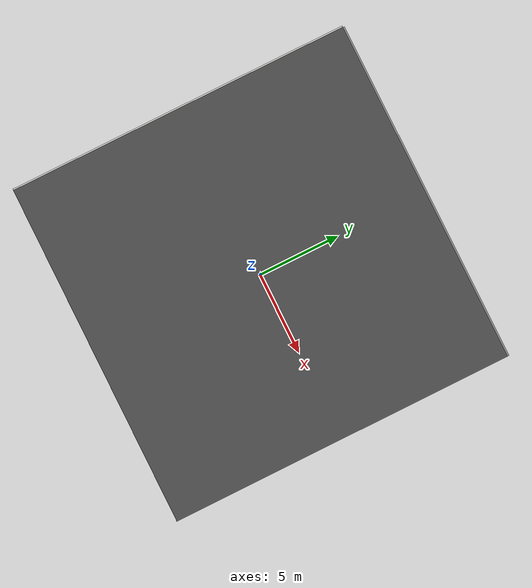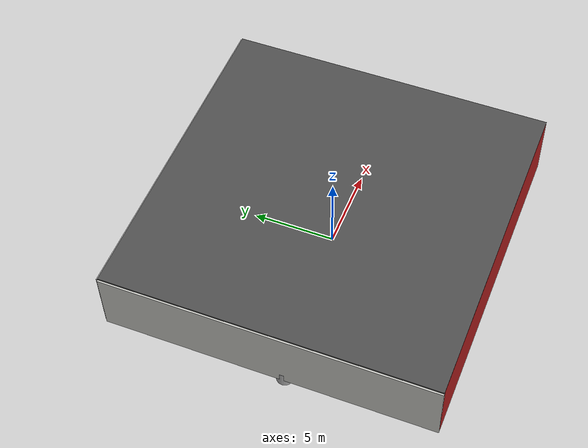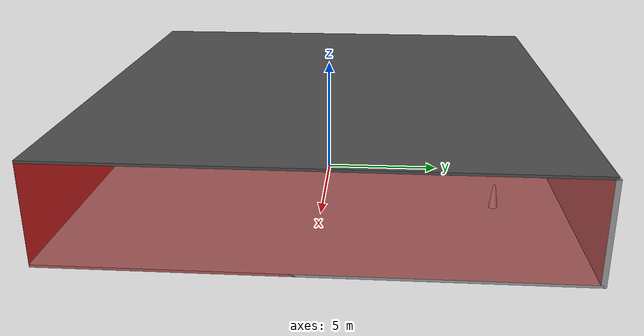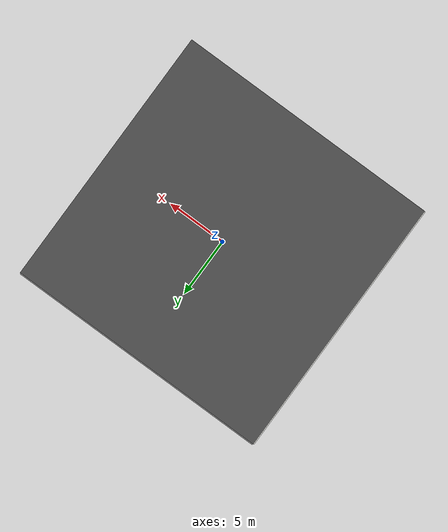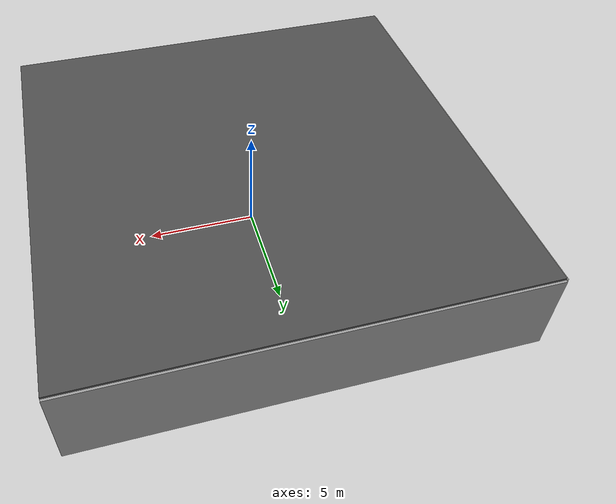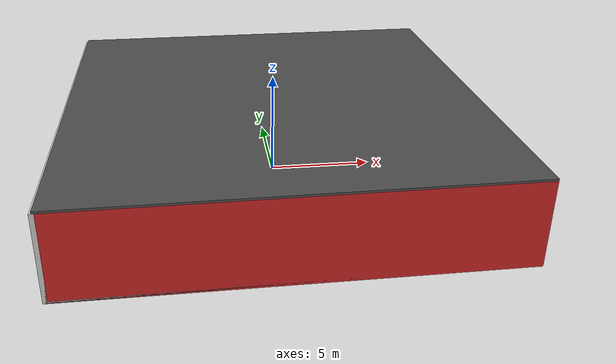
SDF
<sdf version="1.4">
 <world name="default">
  <physics type="ode">
   <max_step_size>0.001</max_step_size>
   <real_time_factor>1</real_time_factor>
   <real_time_update_rate>1000</real_time_update_rate>
   <gravity>0 0 -9.8</gravity>
  </physics>
  <scene><ambient>0.4 0.4 0.4 1</ambient><background>0.7 0.7 0.7 1</background><shadows>1</shadows></scene>
  <model name="Surrounding">
   <static>1</static>
   <link name="Ceiling">
    <collision name="Ceiling_Collision"><geometry><box><size>20 20 0.1</size></box></geometry></collision>
    <visual name="Ceiling_Visual">
     <geometry><box><size>20 20 0.1</size></box></geometry>
     <material>
      <script><uri>file://media/materials/scripts/gazebo.material</uri><name>Gazebo/DarkGrey</name></script>
     </material>
    </visual>
    <pose>0 0 4.05 0 0 0</pose>
   </link>
   <link name="Wall_South">
    <collision name="Wall_South_Collision">
     <geometry><box><size>20 0 4</size></box></geometry>
     <pose>0 0 2 0 -0 0</pose>
    </collision>
    <visual name="Wall_South_Visual">
     <pose>0 0 2 0 -0 0</pose>
     <geometry><box><size>20 0 4</size></box></geometry>
     <material>
      <script><uri>file://media/materials/scripts/gazebo.material</uri><name>Gazebo/RedBright</name></script>
     </material>
    </visual>
    <velocity_decay><linear>0</linear><angular>0</angular></velocity_decay>
    <pose>0 -10 0 0 -0 0</pose>
   </link>
   <link name="Wall_East">
    <collision name="Wall_21_Collision">
     <geometry><box><size>20 0 4</size></box></geometry>
     <pose>0 0 2 0 -0 0</pose>
    </collision>
    <visual name="Wall_21_Visual">
     <pose>0 0 2 0 -0 0</pose>
     <geometry><box><size>20 0 4</size></box></geometry>
     <material>
      <script><uri>file://media/materials/scripts/gazebo.material</uri><name>Gazebo/RedTransparent</name></script>
     </material>
    </visual>
    <velocity_decay><linear>0</linear><angular>0</angular></velocity_decay>
    <pose>10 0 0 0 -0 1.5708</pose>
   </link>
   <link name="Wall_North">
    <collision name="Wall_22_Collision">
     <geometry><box><size>20 0.2 4</size></box></geometry>
     <pose>0 0 2 0 -0 0</pose>
    </collision>
    <visual name="Wall_22_Visual">
     <pose>0 0 2 0 -0 0</pose>
     <geometry><box><size>20 0.2 4</size></box></geometry>
     <material>
      <script><uri>file://media/materials/scripts/gazebo.material</uri><name>Gazebo/GreyGradientSky</name></script>
     </material>
    </visual>
    <velocity_decay><linear>0</linear><angular>0</angular></velocity_decay>
    <pose>0 10 0 0 -0 0</pose>
   </link>
   <link name="Wall_West">
    <collision name="Wall_23_Collision">
     <geometry><box><size>20 0.2 4</size></box></geometry>
     <pose>0 0 2 0 -0 0</pose>
    </collision>
    <visual name="Wall_23_Visual">
     <pose>0 0 2 0 -0 0</pose>
     <geometry><box><size>20 0.2 4</size></box></geometry>
     <material>
      <script><uri>file://media/materials/scripts/gazebo.material</uri><name>Gazebo/CeilingTiled</name></script>
     </material>
    </visual>
    <velocity_decay><linear>0</linear><angular>0</angular></velocity_decay>
    <pose>-10 0 0 0 0 -1.5708</pose>
   </link>
   <link name="Ground_link">
    <collision name="collision">
     <pose>0 0 .05 0 -0 0</pose>
     <geometry><box><size>20 20 0.1</size></box></geometry>
    </collision>
    <visual name="visual">
     <pose>0 0 .05 0 -0 0</pose>
     <geometry><box><size>20 20 0.1</size></box></geometry>
     <material>
      <script><uri>file://media/materials/scripts/gazebo.material</uri><name>Gazebo/GreyGradientSky</name></script>
     </material>
    </visual>
   </link>
   <static>1</static>
  </model>
  <spherical_coordinates>
   <surface_model>EARTH_WGS84</surface_model>
   <latitude_deg>0</latitude_deg>
   <longitude_deg>0</longitude_deg>
   <elevation>0</elevation>
   <heading_deg>0</heading_deg>
  </spherical_coordinates>
  <light name="lightball_0" type="diffuse">
   <diffuse>0.8 0.8 0.8 1</diffuse>
   <specular>0.2 0.2 0.2 1</specular>
   <attenuation>
    <range>100</range>
    <constant>0.7</constant>
    <linear>0.01</linear>
    <quadratic>0.001</quadratic>
   </attenuation>
   <direction>-0.5 0.1 -0.9</direction>
   <pose>-1.47335388782 7.33568429922 3.87024442857 0 0 0</pose>
  </light>
  <light name="lightball_1" type="diffuse">
   <diffuse>0.8 0.8 0.8 1</diffuse>
   <specular>0.2 0.2 0.2 1</specular>
   <attenuation>
    <range>100</range>
    <constant>0.7</constant>
    <linear>0.01</linear>
    <quadratic>0.001</quadratic>
   </attenuation>
   <direction>-0.5 0.1 -0.9</direction>
   <pose>6.36229515575 3.37342215233 2.36397328973 0 0 0</pose>
  </light>
  <light name="lightball_2" type="diffuse">
   <diffuse>0.8 0.8 0.8 1</diffuse>
   <specular>0.2 0.2 0.2 1</specular>
   <attenuation>
    <range>100</range>
    <constant>0.7</constant>
    <linear>0.01</linear>
    <quadratic>0.001</quadratic>
   </attenuation>
   <direction>-0.5 0.1 -0.9</direction>
   <pose>-3.65409438886 5.35890169783 1.9657633731 0 0 0</pose>
  </light>
  <light name="lightball_3" type="diffuse">
   <diffuse>0.8 0.8 0.8 1</diffuse>
   <specular>0.2 0.2 0.2 1</specular>
   <attenuation>
    <range>100</range>
    <constant>0.7</constant>
    <linear>0.01</linear>
    <quadratic>0.001</quadratic>
   </attenuation>
   <direction>-0.5 0.1 -0.9</direction>
   <pose>-8.69619410755 -5.39668435483 0.916244026261 0 0 0</pose>
  </light>
  <light name="lightball_4" type="diffuse">
   <diffuse>0.8 0.8 0.8 1</diffuse>
   <specular>0.2 0.2 0.2 1</specular>
   <attenuation>
    <range>100</range>
    <constant>0.7</constant>
    <linear>0.01</linear>
    <quadratic>0.001</quadratic>
   </attenuation>
   <direction>-0.5 0.1 -0.9</direction>
   <pose>-1.09078221802 -0.730454278234 1.20253246301 0 0 0</pose>
  </light>
  <light name="lightball_5" type="diffuse">
   <diffuse>0.8 0.8 0.8 1</diffuse>
   <specular>0.2 0.2 0.2 1</specular>
   <attenuation>
    <range>100</range>
    <constant>0.7</constant>
    <linear>0.01</linear>
    <quadratic>0.001</quadratic>
   </attenuation>
   <direction>-0.5 0.1 -0.9</direction>
   <pose>4.13244292911 -2.02981159482 2.26013444795 0 0 0</pose>
  </light>
  <light name="lightball_6" type="diffuse">
   <diffuse>0.8 0.8 0.8 1</diffuse>
   <specular>0.2 0.2 0.2 1</specular>
   <attenuation>
    <range>100</range>
    <constant>0.7</constant>
    <linear>0.01</linear>
    <quadratic>0.001</quadratic>
   </attenuation>
   <direction>-0.5 0.1 -0.9</direction>
   <pose>-5.57334584838 0.169063784097 1.10900256588 0 0 0</pose>
  </light>
  <light name="lightball_7" type="diffuse">
   <diffuse>0.8 0.8 0.8 1</diffuse>
   <specular>0.2 0.2 0.2 1</specular>
   <attenuation>
    <range>100</range>
    <constant>0.7</constant>
    <linear>0.01</linear>
    <quadratic>0.001</quadratic>
   </attenuation>
   <direction>-0.5 0.1 -0.9</direction>
   <pose>3.51304954574 2.93926609479 2.74882940833 0 0 0</pose>
  </light>
  <light name="lightball_8" type="diffuse">
   <diffuse>0.8 0.8 0.8 1</diffuse>
   <specular>0.2 0.2 0.2 1</specular>
   <attenuation>
    <range>100</range>
    <constant>0.7</constant>
    <linear>0.01</linear>
    <quadratic>0.001</quadratic>
   </attenuation>
   <direction>-0.5 0.1 -0.9</direction>
   <pose>-8.80159907134 -6.52844431718 1.7273588061 0 0 0</pose>
  </light>
  <include>
   <uri>model://textured_shapes</uri>
   <pose>-8.16607630307 -1.21370487775 0 0 0 1.31749208912</pose>
  </include>
  <include>
   <uri>model://construction_cone</uri>
   <pose>4.1785906188 7.07403384829 0 0 0 1.03815883145</pose>
  </include>
 </world>
</sdf>

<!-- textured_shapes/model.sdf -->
<sdf version="1.6">
  <model name="textured_shapes">
    <pose>0 0 0.5 0 0 0</pose>
    <link name="box">
      <pose>0 -1.5 0 0 0 0</pose>
      <collision name="collision">
        <geometry>
          <box>
            <size>1 1 1</size>
          </box>
        </geometry>
      </collision>
      <visual name="visual">
        <geometry>
          <box>
            <size>1 1 1</size>
          </box>
        </geometry>
        <material>
          <script>
            <uri>model://../model_source/models/textured_shapes/materials/scripts</uri>
            <uri>model://../model_source/models/textured_shapes/materials/textures</uri>
            <name>TexturedShape/Squares</name>
          </script>
        </material>
      </visual>
    </link>
    <link name="sphere">
      <collision name="collision">
        <geometry>
          <sphere>
            <radius>0.5</radius>
          </sphere>
        </geometry>
      </collision>
      <visual name="visual">
        <geometry>
          <sphere>
            <radius>0.5</radius>
          </sphere>
        </geometry>
        <material>
          <script>
            <uri>model://../model_source/models/textured_shapes/materials/scripts</uri>
            <uri>model://../model_source/models/textured_shapes/materials/textures</uri>
            <name>TexturedShape/Squares</name>
          </script>
        </material>
      </visual>
    </link>
    <link name="cylinder">
      <pose>0 1.5 0 0 0 0</pose>
      <collision name="collision">
        <geometry>
          <cylinder>
            <radius>0.5</radius>
            <length>1</length>
          </cylinder>
        </geometry>
      </collision>
      <visual name="visual">
        <geometry>
          <cylinder>
            <radius>0.5</radius>
            <length>1</length>
          </cylinder>
        </geometry>
        <material>
          <script>
            <uri>model://../model_source/models/textured_shapes/materials/scripts</uri>
            <uri>model://../model_source/models/textured_shapes/materials/textures</uri>
            <name>TexturedShape/Squares</name>
          </script>
        </material>
      </visual>
    </link>
  </model>
</sdf>

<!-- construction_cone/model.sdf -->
<sdf version="1.5">
  <model name="Construction Cone">
    <link name="link">
      <collision name="collision">
        <geometry>
          <mesh>
            <scale>10 10 10</scale>
            <uri>file://isr-testbed/construction_cone/meshes/construction_cone.dae</uri>
          </mesh>
        </geometry>
      </collision>
      <visual name="visual">
        <geometry>
          <mesh>
            <scale>10 10 10</scale>
            <uri>file://isr-testbed/construction_cone/meshes/construction_cone.dae</uri>
          </mesh>
        </geometry>
      </visual>
    </link>
  </model>
</sdf>
